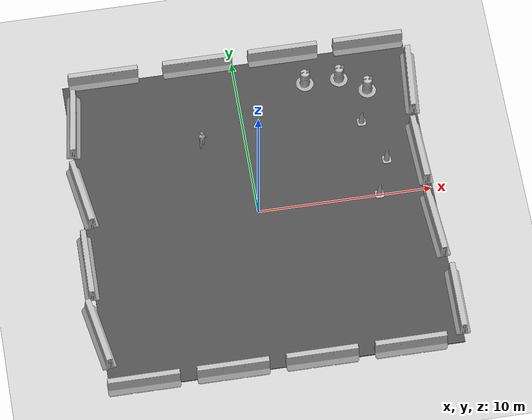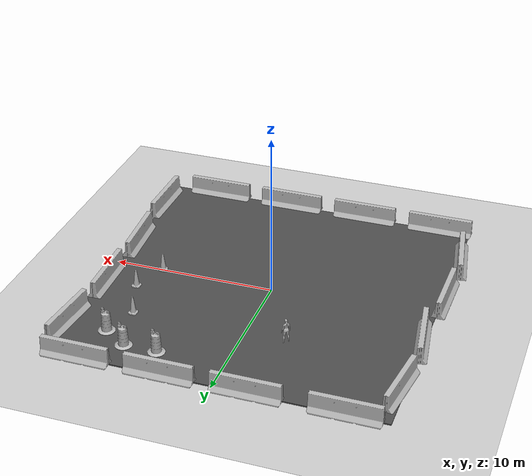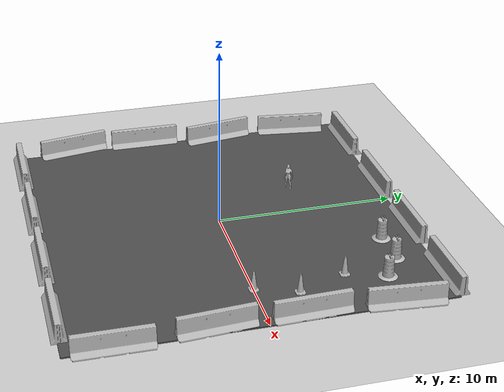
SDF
<sdf version="1.5">
 <world name="diff_drive_world" enable_physics="true">
  <light name="sun" type="directional">
   <pose>0 0 10 0 -0 0</pose>
   <diffuse>0.8 0.8 0.8 1</diffuse>
   <specular>0.2 0.2 0.2 1</specular>
   <attenuation>
    <range>1000</range>
    <constant>0.9</constant>
    <linear>0.01</linear>
    <quadratic>0.001</quadratic>
   </attenuation>
   <direction>-0.5 0.1 -0.9</direction>
  </light>
  <model name="ground_plane">
   <static>1</static>
   <link name="link">
    <collision name="collision">
     <geometry><plane><normal>0 0 1</normal><size>100 100</size></plane></geometry>
     <surface><friction><ode><mu>100</mu><mu2>50</mu2></ode></friction></surface>
    </collision>
    <visual name="visual">
     <cast_shadows>0</cast_shadows>
     <geometry><plane><normal>0 0 1</normal><size>100 100</size></plane></geometry>
     <material>
      <script><uri>file://media/materials/scripts/gazebo.material</uri><name>Gazebo/Grey</name></script>
     </material>
    </visual>
    <velocity_decay><linear>0</linear><angular>0</angular></velocity_decay>
   </link>
  </model>
  <include><uri>model://test_human</uri><pose>-2.5 4.75 0 0 1.57 -0.8</pose></include>
  <physics type="ode">
   <max_step_size>0.01</max_step_size>
   <real_time_factor>1</real_time_factor>
   <real_time_update_rate>100</real_time_update_rate>
   <gravity>0 0 -9.8</gravity>
   <ode><solver><type>quick</type><iters>70</iters></solver></ode>
  </physics>
  <scene><ambient>0.4 0.4 0.4 1</ambient><background>0.7 0.7 0.7 1</background><shadows>1</shadows></scene>
  <model name="jersey_barrier">
   <static>1</static>
   <link name="link">
    <visual name="visual">
     <geometry><mesh><uri>model://jersey_barrier/meshes/jersey_barrier.dae</uri></mesh></geometry>
    </visual>
    <collision name="upright">
     <pose>0 0 0.5715 0 -0 0</pose>
     <geometry><box><size>4.06542 0.3063 1.143</size></box></geometry>
    </collision>
    <collision name="base">
     <pose>0 0 0.032258 0 -0 0</pose>
     <geometry><box><size>4.06542 0.8107 0.064516</size></box></geometry>
    </collision>
    <collision name="base2">
     <pose>0 0 0.1 0 -0 0</pose>
     <geometry><box><size>4.06542 0.65 0.1</size></box></geometry>
    </collision>
    <collision name="base3">
     <pose>0 0 0.2 0 -0 0</pose>
     <geometry><box><size>4.06542 0.5 0.1</size></box></geometry>
    </collision>
    <collision name="left-angle">
     <pose>0 -0.224 0.2401 0.9 -0 0</pose>
     <geometry><box><size>4.06542 0.5 0.064516</size></box></geometry>
    </collision>
    <collision name="right-angle">
     <pose>0 0.224 0.2401 -0.9 0 0</pose>
     <geometry><box><size>4.06542 0.5 0.064516</size></box></geometry>
    </collision>
    <velocity_decay><linear>0</linear><angular>0</angular></velocity_decay>
   </link>
   <pose>-8 -10 0 0 -0 0</pose>
  </model>
  <model name="jersey_barrier_0">
   <static>1</static>
   <link name="link">
    <visual name="visual">
     <geometry><mesh><uri>model://jersey_barrier/meshes/jersey_barrier.dae</uri></mesh></geometry>
    </visual>
    <collision name="upright">
     <pose>0 0 0.5715 0 -0 0</pose>
     <geometry><box><size>4.06542 0.3063 1.143</size></box></geometry>
    </collision>
    <collision name="base">
     <pose>0 0 0.032258 0 -0 0</pose>
     <geometry><box><size>4.06542 0.8107 0.064516</size></box></geometry>
    </collision>
    <collision name="base2">
     <pose>0 0 0.1 0 -0 0</pose>
     <geometry><box><size>4.06542 0.65 0.1</size></box></geometry>
    </collision>
    <collision name="base3">
     <pose>0 0 0.2 0 -0 0</pose>
     <geometry><box><size>4.06542 0.5 0.1</size></box></geometry>
    </collision>
    <collision name="left-angle">
     <pose>0 -0.224 0.2401 0.9 -0 0</pose>
     <geometry><box><size>4.06542 0.5 0.064516</size></box></geometry>
    </collision>
    <collision name="right-angle">
     <pose>0 0.224 0.2401 -0.9 0 0</pose>
     <geometry><box><size>4.06542 0.5 0.064516</size></box></geometry>
    </collision>
    <velocity_decay><linear>0</linear><angular>0</angular></velocity_decay>
   </link>
   <pose>-3 -10 0 0 -0 0</pose>
  </model>
  <model name="jersey_barrier_1">
   <static>1</static>
   <link name="link">
    <visual name="visual">
     <geometry><mesh><uri>model://jersey_barrier/meshes/jersey_barrier.dae</uri></mesh></geometry>
    </visual>
    <collision name="upright">
     <pose>0 0 0.5715 0 -0 0</pose>
     <geometry><box><size>4.06542 0.3063 1.143</size></box></geometry>
    </collision>
    <collision name="base">
     <pose>0 0 0.032258 0 -0 0</pose>
     <geometry><box><size>4.06542 0.8107 0.064516</size></box></geometry>
    </collision>
    <collision name="base2">
     <pose>0 0 0.1 0 -0 0</pose>
     <geometry><box><size>4.06542 0.65 0.1</size></box></geometry>
    </collision>
    <collision name="base3">
     <pose>0 0 0.2 0 -0 0</pose>
     <geometry><box><size>4.06542 0.5 0.1</size></box></geometry>
    </collision>
    <collision name="left-angle">
     <pose>0 -0.224 0.2401 0.9 -0 0</pose>
     <geometry><box><size>4.06542 0.5 0.064516</size></box></geometry>
    </collision>
    <collision name="right-angle">
     <pose>0 0.224 0.2401 -0.9 0 0</pose>
     <geometry><box><size>4.06542 0.5 0.064516</size></box></geometry>
    </collision>
    <velocity_decay><linear>0</linear><angular>0</angular></velocity_decay>
   </link>
   <pose>2 -10 0 0 -0 0</pose>
  </model>
  <model name="jersey_barrier_2">
   <static>1</static>
   <link name="link">
    <visual name="visual">
     <geometry><mesh><uri>model://jersey_barrier/meshes/jersey_barrier.dae</uri></mesh></geometry>
    </visual>
    <collision name="upright">
     <pose>0 0 0.5715 0 -0 0</pose>
     <geometry><box><size>4.06542 0.3063 1.143</size></box></geometry>
    </collision>
    <collision name="base">
     <pose>0 0 0.032258 0 -0 0</pose>
     <geometry><box><size>4.06542 0.8107 0.064516</size></box></geometry>
    </collision>
    <collision name="base2">
     <pose>0 0 0.1 0 -0 0</pose>
     <geometry><box><size>4.06542 0.65 0.1</size></box></geometry>
    </collision>
    <collision name="base3">
     <pose>0 0 0.2 0 -0 0</pose>
     <geometry><box><size>4.06542 0.5 0.1</size></box></geometry>
    </collision>
    <collision name="left-angle">
     <pose>0 -0.224 0.2401 0.9 -0 0</pose>
     <geometry><box><size>4.06542 0.5 0.064516</size></box></geometry>
    </collision>
    <collision name="right-angle">
     <pose>0 0.224 0.2401 -0.9 0 0</pose>
     <geometry><box><size>4.06542 0.5 0.064516</size></box></geometry>
    </collision>
    <velocity_decay><linear>0</linear><angular>0</angular></velocity_decay>
   </link>
   <pose>7 -10 0 0 -0 0</pose>
  </model>
  <model name="jersey_barrier_3">
   <static>1</static>
   <link name="link">
    <visual name="visual">
     <geometry><mesh><uri>model://jersey_barrier/meshes/jersey_barrier.dae</uri></mesh></geometry>
    </visual>
    <collision name="upright">
     <pose>0 0 0.5715 0 -0 0</pose>
     <geometry><box><size>4.06542 0.3063 1.143</size></box></geometry>
    </collision>
    <collision name="base">
     <pose>0 0 0.032258 0 -0 0</pose>
     <geometry><box><size>4.06542 0.8107 0.064516</size></box></geometry>
    </collision>
    <collision name="base2">
     <pose>0 0 0.1 0 -0 0</pose>
     <geometry><box><size>4.06542 0.65 0.1</size></box></geometry>
    </collision>
    <collision name="base3">
     <pose>0 0 0.2 0 -0 0</pose>
     <geometry><box><size>4.06542 0.5 0.1</size></box></geometry>
    </collision>
    <collision name="left-angle">
     <pose>0 -0.224 0.2401 0.9 -0 0</pose>
     <geometry><box><size>4.06542 0.5 0.064516</size></box></geometry>
    </collision>
    <collision name="right-angle">
     <pose>0 0.224 0.2401 -0.9 0 0</pose>
     <geometry><box><size>4.06542 0.5 0.064516</size></box></geometry>
    </collision>
    <velocity_decay><linear>0</linear><angular>0</angular></velocity_decay>
   </link>
   <pose>-7.50675 10 0 0 -0 0</pose>
  </model>
  <model name="jersey_barrier_4">
   <static>1</static>
   <link name="link">
    <visual name="visual">
     <geometry><mesh><uri>model://jersey_barrier/meshes/jersey_barrier.dae</uri></mesh></geometry>
    </visual>
    <collision name="upright">
     <pose>0 0 0.5715 0 -0 0</pose>
     <geometry><box><size>4.06542 0.3063 1.143</size></box></geometry>
    </collision>
    <collision name="base">
     <pose>0 0 0.032258 0 -0 0</pose>
     <geometry><box><size>4.06542 0.8107 0.064516</size></box></geometry>
    </collision>
    <collision name="base2">
     <pose>0 0 0.1 0 -0 0</pose>
     <geometry><box><size>4.06542 0.65 0.1</size></box></geometry>
    </collision>
    <collision name="base3">
     <pose>0 0 0.2 0 -0 0</pose>
     <geometry><box><size>4.06542 0.5 0.1</size></box></geometry>
    </collision>
    <collision name="left-angle">
     <pose>0 -0.224 0.2401 0.9 -0 0</pose>
     <geometry><box><size>4.06542 0.5 0.064516</size></box></geometry>
    </collision>
    <collision name="right-angle">
     <pose>0 0.224 0.2401 -0.9 0 0</pose>
     <geometry><box><size>4.06542 0.5 0.064516</size></box></geometry>
    </collision>
    <velocity_decay><linear>0</linear><angular>0</angular></velocity_decay>
   </link>
   <pose>-2 10 0 0 -0 0</pose>
  </model>
  <model name="jersey_barrier_5">
   <static>1</static>
   <link name="link">
    <visual name="visual">
     <geometry><mesh><uri>model://jersey_barrier/meshes/jersey_barrier.dae</uri></mesh></geometry>
    </visual>
    <collision name="upright">
     <pose>0 0 0.5715 0 -0 0</pose>
     <geometry><box><size>4.06542 0.3063 1.143</size></box></geometry>
    </collision>
    <collision name="base">
     <pose>0 0 0.032258 0 -0 0</pose>
     <geometry><box><size>4.06542 0.8107 0.064516</size></box></geometry>
    </collision>
    <collision name="base2">
     <pose>0 0 0.1 0 -0 0</pose>
     <geometry><box><size>4.06542 0.65 0.1</size></box></geometry>
    </collision>
    <collision name="base3">
     <pose>0 0 0.2 0 -0 0</pose>
     <geometry><box><size>4.06542 0.5 0.1</size></box></geometry>
    </collision>
    <collision name="left-angle">
     <pose>0 -0.224 0.2401 0.9 -0 0</pose>
     <geometry><box><size>4.06542 0.5 0.064516</size></box></geometry>
    </collision>
    <collision name="right-angle">
     <pose>0 0.224 0.2401 -0.9 0 0</pose>
     <geometry><box><size>4.06542 0.5 0.064516</size></box></geometry>
    </collision>
    <velocity_decay><linear>0</linear><angular>0</angular></velocity_decay>
   </link>
   <pose>3 10 0 0 -0 0</pose>
  </model>
  <model name="jersey_barrier_6">
   <static>1</static>
   <link name="link">
    <visual name="visual">
     <geometry><mesh><uri>model://jersey_barrier/meshes/jersey_barrier.dae</uri></mesh></geometry>
    </visual>
    <collision name="upright">
     <pose>0 0 0.5715 0 -0 0</pose>
     <geometry><box><size>4.06542 0.3063 1.143</size></box></geometry>
    </collision>
    <collision name="base">
     <pose>0 0 0.032258 0 -0 0</pose>
     <geometry><box><size>4.06542 0.8107 0.064516</size></box></geometry>
    </collision>
    <collision name="base2">
     <pose>0 0 0.1 0 -0 0</pose>
     <geometry><box><size>4.06542 0.65 0.1</size></box></geometry>
    </collision>
    <collision name="base3">
     <pose>0 0 0.2 0 -0 0</pose>
     <geometry><box><size>4.06542 0.5 0.1</size></box></geometry>
    </collision>
    <collision name="left-angle">
     <pose>0 -0.224 0.2401 0.9 -0 0</pose>
     <geometry><box><size>4.06542 0.5 0.064516</size></box></geometry>
    </collision>
    <collision name="right-angle">
     <pose>0 0.224 0.2401 -0.9 0 0</pose>
     <geometry><box><size>4.06542 0.5 0.064516</size></box></geometry>
    </collision>
    <velocity_decay><linear>0</linear><angular>0</angular></velocity_decay>
   </link>
   <pose>8 10 0 0 -0 0</pose>
  </model>
  <model name="jersey_barrier_7">
   <static>1</static>
   <link name="link">
    <visual name="visual">
     <geometry><mesh><uri>model://jersey_barrier/meshes/jersey_barrier.dae</uri></mesh></geometry>
    </visual>
    <collision name="upright">
     <pose>0 0 0.5715 0 -0 0</pose>
     <geometry><box><size>4.06542 0.3063 1.143</size></box></geometry>
    </collision>
    <collision name="base">
     <pose>0 0 0.032258 0 -0 0</pose>
     <geometry><box><size>4.06542 0.8107 0.064516</size></box></geometry>
    </collision>
    <collision name="base2">
     <pose>0 0 0.1 0 -0 0</pose>
     <geometry><box><size>4.06542 0.65 0.1</size></box></geometry>
    </collision>
    <collision name="base3">
     <pose>0 0 0.2 0 -0 0</pose>
     <geometry><box><size>4.06542 0.5 0.1</size></box></geometry>
    </collision>
    <collision name="left-angle">
     <pose>0 -0.224 0.2401 0.9 -0 0</pose>
     <geometry><box><size>4.06542 0.5 0.064516</size></box></geometry>
    </collision>
    <collision name="right-angle">
     <pose>0 0.224 0.2401 -0.9 0 0</pose>
     <geometry><box><size>4.06542 0.5 0.064516</size></box></geometry>
    </collision>
    <velocity_decay><linear>0</linear><angular>0</angular></velocity_decay>
   </link>
   <pose>9.74902 -2.57759 0 0 -0 1.64</pose>
  </model>
  <model name="jersey_barrier_8">
   <static>1</static>
   <link name="link">
    <visual name="visual">
     <geometry><mesh><uri>model://jersey_barrier/meshes/jersey_barrier.dae</uri></mesh></geometry>
    </visual>
    <collision name="upright">
     <pose>0 0 0.5715 0 -0 0</pose>
     <geometry><box><size>4.06542 0.3063 1.143</size></box></geometry>
    </collision>
    <collision name="base">
     <pose>0 0 0.032258 0 -0 0</pose>
     <geometry><box><size>4.06542 0.8107 0.064516</size></box></geometry>
    </collision>
    <collision name="base2">
     <pose>0 0 0.1 0 -0 0</pose>
     <geometry><box><size>4.06542 0.65 0.1</size></box></geometry>
    </collision>
    <collision name="base3">
     <pose>0 0 0.2 0 -0 0</pose>
     <geometry><box><size>4.06542 0.5 0.1</size></box></geometry>
    </collision>
    <collision name="left-angle">
     <pose>0 -0.224 0.2401 0.9 -0 0</pose>
     <geometry><box><size>4.06542 0.5 0.064516</size></box></geometry>
    </collision>
    <collision name="right-angle">
     <pose>0 0.224 0.2401 -0.9 0 0</pose>
     <geometry><box><size>4.06542 0.5 0.064516</size></box></geometry>
    </collision>
    <velocity_decay><linear>0</linear><angular>0</angular></velocity_decay>
   </link>
   <pose>9.70141 2.24369 0 0 -0 1.6</pose>
  </model>
  <model name="jersey_barrier_9">
   <static>1</static>
   <link name="link">
    <visual name="visual">
     <geometry><mesh><uri>model://jersey_barrier/meshes/jersey_barrier.dae</uri></mesh></geometry>
    </visual>
    <collision name="upright">
     <pose>0 0 0.5715 0 -0 0</pose>
     <geometry><box><size>4.06542 0.3063 1.143</size></box></geometry>
    </collision>
    <collision name="base">
     <pose>0 0 0.032258 0 -0 0</pose>
     <geometry><box><size>4.06542 0.8107 0.064516</size></box></geometry>
    </collision>
    <collision name="base2">
     <pose>0 0 0.1 0 -0 0</pose>
     <geometry><box><size>4.06542 0.65 0.1</size></box></geometry>
    </collision>
    <collision name="base3">
     <pose>0 0 0.2 0 -0 0</pose>
     <geometry><box><size>4.06542 0.5 0.1</size></box></geometry>
    </collision>
    <collision name="left-angle">
     <pose>0 -0.224 0.2401 0.9 -0 0</pose>
     <geometry><box><size>4.06542 0.5 0.064516</size></box></geometry>
    </collision>
    <collision name="right-angle">
     <pose>0 0.224 0.2401 -0.9 0 0</pose>
     <geometry><box><size>4.06542 0.5 0.064516</size></box></geometry>
    </collision>
    <velocity_decay><linear>0</linear><angular>0</angular></velocity_decay>
   </link>
   <pose>-10.0607 -6.69856 0 0 0 -1.4</pose>
  </model>
  <model name="jersey_barrier_10">
   <static>1</static>
   <link name="link">
    <visual name="visual">
     <geometry><mesh><uri>model://jersey_barrier/meshes/jersey_barrier.dae</uri></mesh></geometry>
    </visual>
    <collision name="upright">
     <pose>0 0 0.5715 0 -0 0</pose>
     <geometry><box><size>4.06542 0.3063 1.143</size></box></geometry>
    </collision>
    <collision name="base">
     <pose>0 0 0.032258 0 -0 0</pose>
     <geometry><box><size>4.06542 0.8107 0.064516</size></box></geometry>
    </collision>
    <collision name="base2">
     <pose>0 0 0.1 0 -0 0</pose>
     <geometry><box><size>4.06542 0.65 0.1</size></box></geometry>
    </collision>
    <collision name="base3">
     <pose>0 0 0.2 0 -0 0</pose>
     <geometry><box><size>4.06542 0.5 0.1</size></box></geometry>
    </collision>
    <collision name="left-angle">
     <pose>0 -0.224 0.2401 0.9 -0 0</pose>
     <geometry><box><size>4.06542 0.5 0.064516</size></box></geometry>
    </collision>
    <collision name="right-angle">
     <pose>0 0.224 0.2401 -0.9 0 0</pose>
     <geometry><box><size>4.06542 0.5 0.064516</size></box></geometry>
    </collision>
    <velocity_decay><linear>0</linear><angular>0</angular></velocity_decay>
   </link>
   <pose>-10.0774 -2.27159 0 0 -0 1.56</pose>
  </model>
  <model name="jersey_barrier_11">
   <static>1</static>
   <link name="link">
    <visual name="visual">
     <geometry><mesh><uri>model://jersey_barrier/meshes/jersey_barrier.dae</uri></mesh></geometry>
    </visual>
    <collision name="upright">
     <pose>0 0 0.5715 0 -0 0</pose>
     <geometry><box><size>4.06542 0.3063 1.143</size></box></geometry>
    </collision>
    <collision name="base">
     <pose>0 0 0.032258 0 -0 0</pose>
     <geometry><box><size>4.06542 0.8107 0.064516</size></box></geometry>
    </collision>
    <collision name="base2">
     <pose>0 0 0.1 0 -0 0</pose>
     <geometry><box><size>4.06542 0.65 0.1</size></box></geometry>
    </collision>
    <collision name="base3">
     <pose>0 0 0.2 0 -0 0</pose>
     <geometry><box><size>4.06542 0.5 0.1</size></box></geometry>
    </collision>
    <collision name="left-angle">
     <pose>0 -0.224 0.2401 0.9 -0 0</pose>
     <geometry><box><size>4.06542 0.5 0.064516</size></box></geometry>
    </collision>
    <collision name="right-angle">
     <pose>0 0.224 0.2401 -0.9 0 0</pose>
     <geometry><box><size>4.06542 0.5 0.064516</size></box></geometry>
    </collision>
    <velocity_decay><linear>0</linear><angular>0</angular></velocity_decay>
   </link>
   <pose>-9.77013 2.34791 0 0 -0 1.72</pose>
  </model>
  <model name="jersey_barrier_12">
   <static>1</static>
   <link name="link">
    <visual name="visual">
     <geometry><mesh><uri>model://jersey_barrier/meshes/jersey_barrier.dae</uri></mesh></geometry>
    </visual>
    <collision name="upright">
     <pose>0 0 0.5715 0 -0 0</pose>
     <geometry><box><size>4.06542 0.3063 1.143</size></box></geometry>
    </collision>
    <collision name="base">
     <pose>0 0 0.032258 0 -0 0</pose>
     <geometry><box><size>4.06542 0.8107 0.064516</size></box></geometry>
    </collision>
    <collision name="base2">
     <pose>0 0 0.1 0 -0 0</pose>
     <geometry><box><size>4.06542 0.65 0.1</size></box></geometry>
    </collision>
    <collision name="base3">
     <pose>0 0 0.2 0 -0 0</pose>
     <geometry><box><size>4.06542 0.5 0.1</size></box></geometry>
    </collision>
    <collision name="left-angle">
     <pose>0 -0.224 0.2401 0.9 -0 0</pose>
     <geometry><box><size>4.06542 0.5 0.064516</size></box></geometry>
    </collision>
    <collision name="right-angle">
     <pose>0 0.224 0.2401 -0.9 0 0</pose>
     <geometry><box><size>4.06542 0.5 0.064516</size></box></geometry>
    </collision>
    <velocity_decay><linear>0</linear><angular>0</angular></velocity_decay>
   </link>
   <pose>10.0879 -7.62159 0 0 -0 1.56</pose>
  </model>
  <model name="jersey_barrier_13">
   <static>1</static>
   <link name="link">
    <visual name="visual">
     <geometry><mesh><uri>model://jersey_barrier/meshes/jersey_barrier.dae</uri></mesh></geometry>
    </visual>
    <collision name="upright">
     <pose>0 0 0.5715 0 -0 0</pose>
     <geometry><box><size>4.06542 0.3063 1.143</size></box></geometry>
    </collision>
    <collision name="base">
     <pose>0 0 0.032258 0 -0 0</pose>
     <geometry><box><size>4.06542 0.8107 0.064516</size></box></geometry>
    </collision>
    <collision name="base2">
     <pose>0 0 0.1 0 -0 0</pose>
     <geometry><box><size>4.06542 0.65 0.1</size></box></geometry>
    </collision>
    <collision name="base3">
     <pose>0 0 0.2 0 -0 0</pose>
     <geometry><box><size>4.06542 0.5 0.1</size></box></geometry>
    </collision>
    <collision name="left-angle">
     <pose>0 -0.224 0.2401 0.9 -0 0</pose>
     <geometry><box><size>4.06542 0.5 0.064516</size></box></geometry>
    </collision>
    <collision name="right-angle">
     <pose>0 0.224 0.2401 -0.9 0 0</pose>
     <geometry><box><size>4.06542 0.5 0.064516</size></box></geometry>
    </collision>
    <velocity_decay><linear>0</linear><angular>0</angular></velocity_decay>
   </link>
   <pose>10 7 0 0 -0 1.48</pose>
  </model>
  <model name="jersey_barrier_14">
   <static>1</static>
   <link name="link">
    <visual name="visual">
     <geometry><mesh><uri>model://jersey_barrier/meshes/jersey_barrier.dae</uri></mesh></geometry>
    </visual>
    <collision name="upright">
     <pose>0 0 0.5715 0 -0 0</pose>
     <geometry><box><size>4.06542 0.3063 1.143</size></box></geometry>
    </collision>
    <collision name="base">
     <pose>0 0 0.032258 0 -0 0</pose>
     <geometry><box><size>4.06542 0.8107 0.064516</size></box></geometry>
    </collision>
    <collision name="base2">
     <pose>0 0 0.1 0 -0 0</pose>
     <geometry><box><size>4.06542 0.65 0.1</size></box></geometry>
    </collision>
    <collision name="base3">
     <pose>0 0 0.2 0 -0 0</pose>
     <geometry><box><size>4.06542 0.5 0.1</size></box></geometry>
    </collision>
    <collision name="left-angle">
     <pose>0 -0.224 0.2401 0.9 -0 0</pose>
     <geometry><box><size>4.06542 0.5 0.064516</size></box></geometry>
    </collision>
    <collision name="right-angle">
     <pose>0 0.224 0.2401 -0.9 0 0</pose>
     <geometry><box><size>4.06542 0.5 0.064516</size></box></geometry>
    </collision>
    <velocity_decay><linear>0</linear><angular>0</angular></velocity_decay>
   </link>
   <pose>-9.64482 7.05946 0 0 -0 1.44</pose>
  </model>
  <model name="Construction Cone">
   <link name="link">
    <collision name="collision">
     <geometry>
      <mesh><scale>10 10 10</scale><uri>model://construction_cone/meshes/construction_cone.dae</uri></mesh>
     </geometry>
    </collision>
    <visual name="visual">
     <geometry>
      <mesh><scale>10 10 10</scale><uri>model://construction_cone/meshes/construction_cone.dae</uri></mesh>
     </geometry>
    </visual>
    <velocity_decay><linear>0</linear><angular>0</angular></velocity_decay>
    <inertial>
     <inertia><ixx>1</ixx><ixy>0</ixy><ixz>0</ixz><iyy>1</iyy><iyz>0</iyz><izz>1</izz></inertia>
     <mass>1</mass>
    </inertial>
    <kinematic>1</kinematic>
   </link>
   <plugin name="plannar_mover_plugin" filename="libplannar_mover_plugin.so"/>
   <pose>7.8 2.2 0.05 0 -1e-06 0</pose>
   <static>0</static>
  </model>
  <model name="Construction Barrel">
   <link name="link">
    <inertial>
     <pose>0 0 0.4 0 -0 0</pose>
     <mass>500</mass>
     <inertia><ixx>51.2096</ixx><iyy>51.2096</iyy><izz>25</izz><ixy>0</ixy><ixz>0</ixz><iyz>0</iyz></inertia>
    </inertial>
    <collision name="collision">
     <geometry><mesh><uri>model://construction_barrel/meshes/construction_barrel.dae</uri></mesh></geometry>
    </collision>
    <visual name="visual">
     <geometry><mesh><uri>model://construction_barrel/meshes/construction_barrel.dae</uri></mesh></geometry>
    </visual>
    <velocity_decay><linear>0</linear><angular>0</angular></velocity_decay>
    <kinematic>1</kinematic>
   </link>
   <plugin name="plannar_mover_plugin" filename="libplannar_mover_plugin.so"/>
   <pose>7.5 7 0.049999 4e-06 -0 0.000401</pose>
   <static>0</static>
  </model>
  <model name="Construction Cone_0">
   <link name="link">
    <collision name="collision">
     <geometry>
      <mesh><scale>10 10 10</scale><uri>model://construction_cone/meshes/construction_cone.dae</uri></mesh>
     </geometry>
    </collision>
    <visual name="visual">
     <geometry>
      <mesh><scale>10 10 10</scale><uri>model://construction_cone/meshes/construction_cone.dae</uri></mesh>
     </geometry>
    </visual>
    <velocity_decay><linear>0</linear><angular>0</angular></velocity_decay>
    <inertial>
     <inertia><ixx>1</ixx><ixy>0</ixy><ixz>0</ixz><iyy>1</iyy><iyz>0</iyz><izz>1</izz></inertia>
     <mass>1</mass>
    </inertial>
    <kinematic>1</kinematic>
   </link>
   <plugin name="plannar_mover_plugin" filename="libplannar_mover_plugin.so"/>
   <pose>6.8 4.9 0.05 -8.27181e-25 1e-06 -0.007012</pose>
   <static>0</static>
  </model>
  <model name="Construction Barrel_0">
   <link name="link">
    <inertial>
     <pose>0 0 0.4 0 -0 0</pose>
     <mass>500</mass>
     <inertia><ixx>51.2096</ixx><iyy>51.2096</iyy><izz>25</izz><ixy>0</ixy><ixz>0</ixz><iyz>0</iyz></inertia>
    </inertial>
    <collision name="collision">
     <geometry><mesh><uri>model://construction_barrel/meshes/construction_barrel.dae</uri></mesh></geometry>
    </collision>
    <visual name="visual">
     <geometry><mesh><uri>model://construction_barrel/meshes/construction_barrel.dae</uri></mesh></geometry>
    </visual>
    <velocity_decay><linear>0</linear><angular>0</angular></velocity_decay>
    <kinematic>1</kinematic>
   </link>
   <plugin name="plannar_mover_plugin" filename="libplannar_mover_plugin.so"/>
   <pose>6 8 0.049999 -1e-06 -3e-06 3.8e-05</pose>
   <static>0</static>
  </model>
  <model name="Construction Barrel_1">
   <link name="link">
    <inertial>
     <pose>0 0 0.4 0 -0 0</pose>
     <mass>500</mass>
     <inertia><ixx>51.2096</ixx><iyy>51.2096</iyy><izz>25</izz><ixy>0</ixy><ixz>0</ixz><iyz>0</iyz></inertia>
    </inertial>
    <collision name="collision">
     <geometry><mesh><uri>model://construction_barrel/meshes/construction_barrel.dae</uri></mesh></geometry>
    </collision>
    <visual name="visual">
     <geometry><mesh><uri>model://construction_barrel/meshes/construction_barrel.dae</uri></mesh></geometry>
    </visual>
    <velocity_decay><linear>0</linear><angular>0</angular></velocity_decay>
    <kinematic>1</kinematic>
   </link>
   <plugin name="plannar_mover_plugin" filename="libplannar_mover_plugin.so"/>
   <pose>4 8 0.049999 4e-06 1e-06 -0.009616</pose>
   <static>0</static>
  </model>
  <model name="asphalt_plane">
   <static>1</static>
   <link name="link">
    <collision name="collision"><geometry><box><size>20 20 0.1</size></box></geometry></collision>
    <visual name="visual">
     <cast_shadows>0</cast_shadows>
     <geometry><box><size>20 20 0.1</size></box></geometry>
     <material>
      <script>
       <uri>model://asphalt_plane/materials/scripts</uri>
       <uri>model://asphalt_plane/materials/textures</uri>
       <name>vrc/asphalt</name>
      </script>
     </material>
    </visual>
    <velocity_decay><linear>0</linear><angular>0</angular></velocity_decay>
   </link>
   <pose>0.076733 -0.110379 0 0 -0 0</pose>
  </model>
  <model name="Construction Cone_1">
   <link name="link">
    <collision name="collision">
     <geometry>
      <mesh><scale>10 10 10</scale><uri>model://construction_cone/meshes/construction_cone.dae</uri></mesh>
     </geometry>
    </collision>
    <visual name="visual">
     <geometry>
      <mesh><scale>10 10 10</scale><uri>model://construction_cone/meshes/construction_cone.dae</uri></mesh>
     </geometry>
    </visual>
    <velocity_decay><linear>0</linear><angular>0</angular></velocity_decay>
    <inertial>
     <inertia><ixx>1</ixx><ixy>0</ixy><ixz>0</ixz><iyy>1</iyy><iyz>0</iyz><izz>1</izz></inertia>
     <mass>1</mass>
    </inertial>
    <kinematic>1</kinematic>
   </link>
   <plugin name="plannar_mover_plugin" filename="libplannar_mover_plugin.so"/>
   <pose>7 0 0.049999 0 3e-06 0</pose>
   <static>0</static>
  </model>
 </world>
</sdf>

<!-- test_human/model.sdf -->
<sdf version="1.5">
  <model name="test_human">
    <link name="link">

      <inertial>
        <pose>0 -0.1 0.95 0 0 0</pose>
        <mass>60.0</mass>
        <inertia>
          <ixx>24.88</ixx>
          <ixy>0.0</ixy>
          <ixz>0.0</ixz>
          <iyy>25.73</iyy>
          <iyz>0.0</iyz>
          <izz>2.48</izz>
        </inertia>
      </inertial>

      <collision name="bottom">
		<pose>0 0 0.01 0 0 1.57</pose>
		<geometry>
			<box>
				<size>0.5 0.35 0.02</size>
			</box>
		</geometry>
      </collision>

      <collision name="person">
		<pose>0 0 0.02 0 0 1.57</pose>
        <geometry>
          <mesh>
            <uri>model://test_human/meshes/test_human.dae</uri>
          </mesh>
        </geometry>
      </collision>

      <visual name="test_human_visual">
      <pose>0 0 0.02 0 0 1.57</pose>
      <geometry>
		<mesh>
			<uri>model://test_human/meshes/test_human.dae</uri>
		</mesh>
	  </geometry>
	  </visual>

    </link>
    <static>1</static>
  </model>
</sdf>
